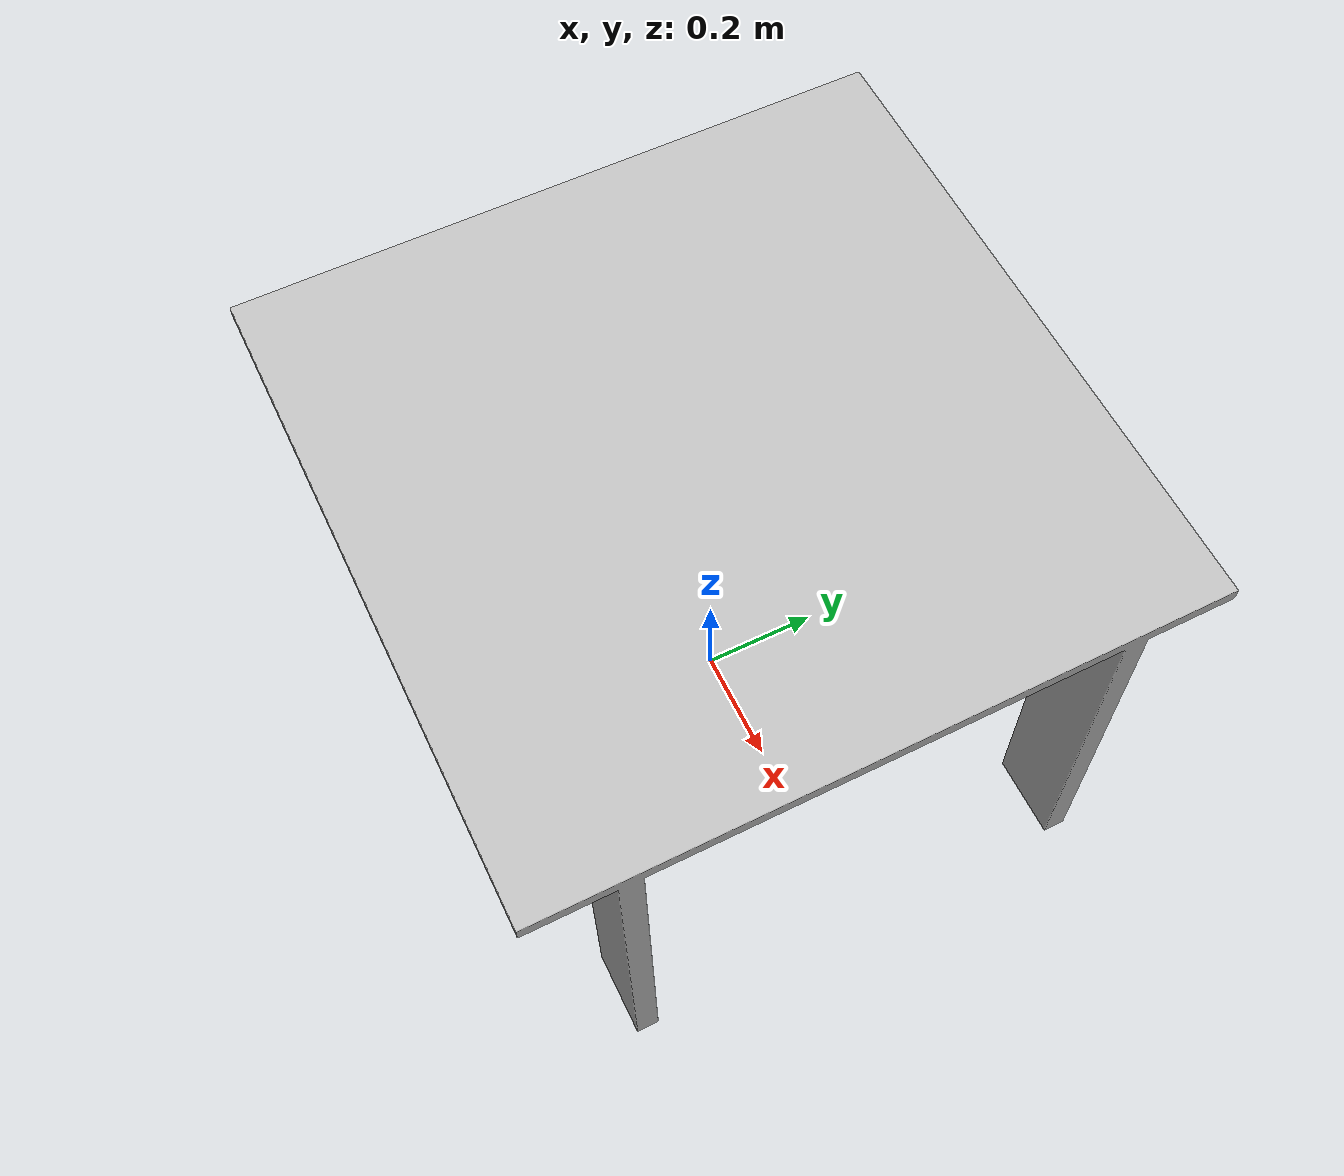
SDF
<?xml version='1.0'?>
<sdf version='1.4'>
  <model name='s__1925'>
    <pose>0 0 0 0 0 0</pose>
    <static>true</static>
    <link name='link'>
      <collision name='collision'>
        <pose>0 0 0 0 0 0</pose>
        <geometry>
          <box>
            <size>1.1 1.1 2</size>
          </box>
        </geometry>
      </collision>
      <visual name='visual'>
        <pose>0 0 0 0 0 0</pose>
        <geometry>
          <mesh><uri>model://s__1925/s__1925.dae</uri></mesh>
        </geometry>
      </visual>
    </link>
  </model>
</sdf>
